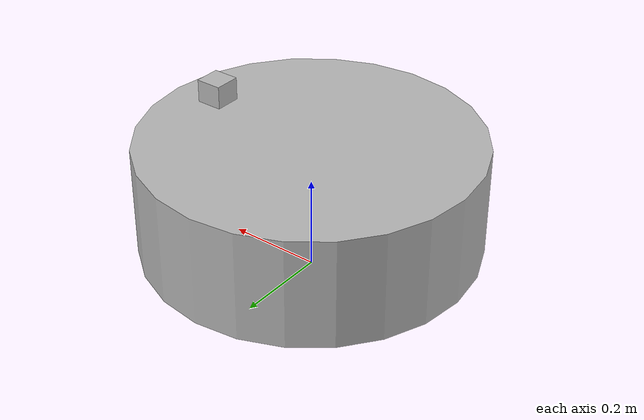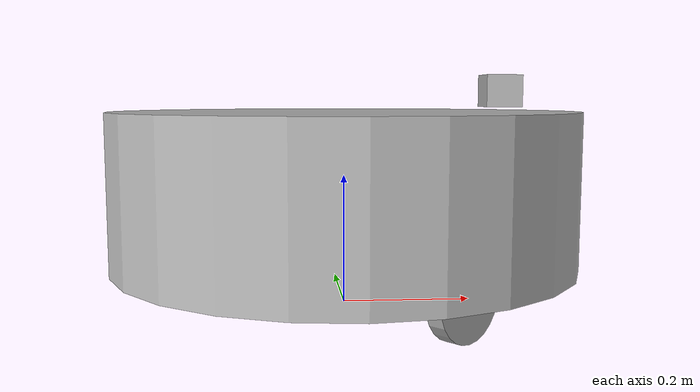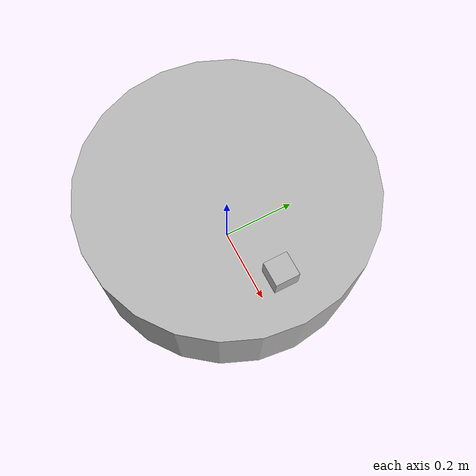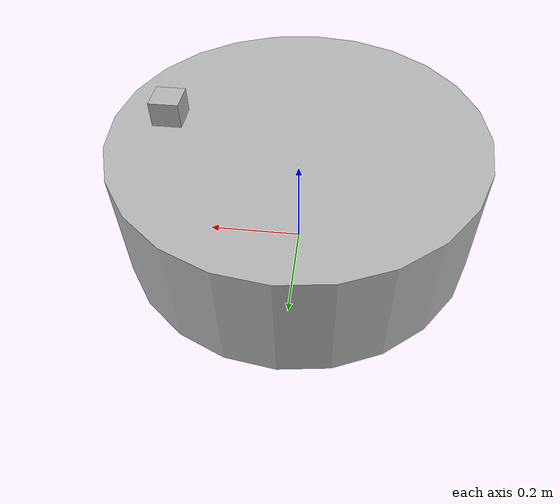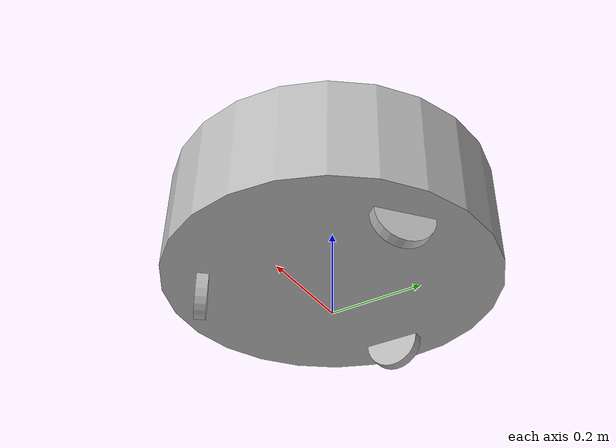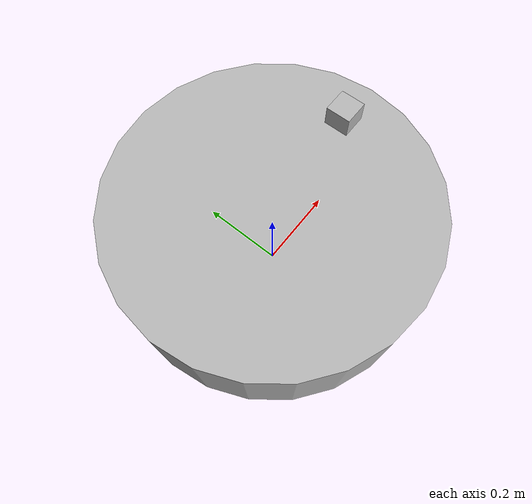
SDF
<?xml version="1.0"?>
<sdf version="1.0">
  <model name="SIM_IKART">
    <static>false</static>
    <link name="mobile_base_body">
      <pose> 0 0 .181 0 0 0 </pose>
      <inertial>
        <mass>75</mass>
      </inertial>
      <collision name="mobile_base_body_collision">
        <geometry>
          <cylinder>
            <radius> .3575 </radius>
            <length> .237 </length>
          </cylinder>
        </geometry>
      </collision>
      <visual name="mobile_base_body_visual">
        <geometry>
          <cylinder>
            <radius> .3575 </radius>
            <length> .237 </length>
          </cylinder>
        </geometry>
      </visual>
      <visual name="laser_box_body_visual">
        <pose> .245 0 .15 0 0 0</pose>
        <geometry>
          <box>
            <size> .056 .056 .0495 </size>
          </box>
        </geometry>
      </visual>
      <sensor name="base_laser" type="ray">
        <pose> .245 0 .15 0 0 0</pose>
        <visualize>true</visualize>
        <update_rate>40</update_rate>
        <ray>
          <scan>
            <horizontal>
              <samples>1080</samples>
              <resolution>0.25</resolution>
              <min_angle>-2.35</min_angle>
              <max_angle>2.35</max_angle>
            </horizontal>
          </scan>
          <range>
            <min>0.1</min>
            <max>30</max>
            <resolution>.01</resolution>
          </range>
          <noise>
            <type>gaussian</type>
            <mean>.0</mean>
            <stddev>.005</stddev>
          </noise>
        </ray>
        <plugin name="laser_sensor" filename="libgazebo_yarp_lasersensor.so">
          <yarpConfigurationFile>model://ikart_v1/conf/gazebo_ikart_laser_sensor.ini</yarpConfigurationFile>
        </plugin>
      </sensor>
    </link>
    <link name="laser_back_wheel">
      <pose> -0.273 0 0.0625 0 -1.5707 0 </pose>
      <collision name="laser_back_wheel_collision">
        <geometry>
          <cylinder>
            <radius> .0625 </radius>
            <length> .025 </length>
          </cylinder>
        </geometry>
        <surface>
          <friction>
            <ode>
              <mu>0.3</mu>
              <mu2>0</mu2>
            </ode>
          </friction>
        </surface>
      </collision>
      <visual name="laser_back_wheel_visual">
        <geometry>
          <cylinder>
            <radius> .0625 </radius>
            <length> .025 </length>
          </cylinder>
        </geometry>
      </visual>
    </link>
    <link name="laser_front_left_wheel">
      <pose> 0.1365 0.2364 0.0625 0 1.5707 0.8666 </pose>
      <collision name="laser_front_left_wheel_collision">
        <geometry>
          <cylinder>
            <radius> .0625 </radius>
            <length> .025 </length>
          </cylinder>
        </geometry>
        <surface>
          <friction>
            <ode>
              <mu>0.3</mu>
              <mu2>0</mu2>
            </ode>
          </friction>
        </surface>
      </collision>
      <visual name="laser_front_left_wheel_visual">
        <geometry>
          <cylinder>
            <radius> .0625 </radius>
            <length> .025 </length>
          </cylinder>
        </geometry>
      </visual>
    </link>
    <link name="laser_front_right_wheel">
      <pose> 0.1365 -0.2364 0.0625 0 1.5707 -0.866025403784 </pose>
      <collision name="laser_front_right_wheel_collision">
        <geometry>
          <cylinder>
            <radius> .0625 </radius>
            <length> .025 </length>
          </cylinder>
        </geometry>
        <surface>
          <friction>
            <ode>
              <mu>0.3</mu>
              <mu2>0</mu2>
            </ode>
          </friction>
        </surface>
      </collision>
      <visual name="laser_front_right_wheel_visual">
        <geometry>
          <cylinder>
            <radius> .0625 </radius>
            <length> .025 </length>
          </cylinder>
        </geometry>
      </visual>
    </link>
    <joint name="mobile_base_back_wheel_joint" type="revolute">
      <child>laser_back_wheel</child>
      <parent>mobile_base_body</parent>
      <axis>
        <xyz>0 0 1</xyz>
        <limit>
          <effort>100</effort>
          <velocity>50000</velocity>
        </limit>
        <dynamics>
          <damping>1</damping>
          <friction>0</friction>
          <spring_reference>0</spring_reference>
          <spring_stiffness>0</spring_stiffness>
        </dynamics>
        <use_parent_model_frame>0</use_parent_model_frame>
      </axis>
      <physics>
        <ode>
          <implicit_spring_damper>1</implicit_spring_damper>
          <cfm_damping>1</cfm_damping>
          <limit>
            <cfm>0</cfm>
            <erp>0.2</erp>
          </limit>
        </ode>
      </physics>
    </joint>
    <joint name="mobile_base_left_wheel_joint" type="revolute">
      <child>laser_front_left_wheel</child>
      <parent>mobile_base_body</parent>
      <axis>
        <xyz>0 0 1</xyz>
        <limit>
          <effort>100</effort>
          <velocity>50000</velocity>
        </limit>
        <dynamics>
          <damping>1</damping>
          <friction>0</friction>
          <spring_reference>0</spring_reference>
          <spring_stiffness>0</spring_stiffness>
        </dynamics>
        <use_parent_model_frame>0</use_parent_model_frame>
      </axis>
      <physics>
        <ode>
          <implicit_spring_damper>1</implicit_spring_damper>
          <cfm_damping>1</cfm_damping>
          <limit>
            <cfm>0</cfm>
            <erp>0.2</erp>
          </limit>
        </ode>
      </physics>
    </joint>
    <joint name="mobile_base_right_wheel_joint" type="revolute">
      <child>laser_front_right_wheel</child>
      <parent>mobile_base_body</parent>
      <axis>
        <xyz> 0 0 -1</xyz>
        <limit>
          <effort>100</effort>
          <velocity>50000</velocity>
        </limit>
        <dynamics>
          <damping>1</damping>
          <friction>0</friction>
          <spring_reference>0</spring_reference>
          <spring_stiffness>0</spring_stiffness>
        </dynamics>
        <use_parent_model_frame>0</use_parent_model_frame>
      </axis>
      <physics>
        <ode>
          <implicit_spring_damper>1</implicit_spring_damper>
          <cfm_damping>1</cfm_damping>
          <limit>
            <cfm>0</cfm>
            <erp>0.2</erp>
          </limit>
        </ode>
      </physics>
    </joint>
    <plugin name="controlboard_mobile_base" filename="libgazebo_yarp_controlboard.so">
      <yarpConfigurationFile>model://ikart_v1/conf/gazebo_ikart_mobile_base.ini</yarpConfigurationFile>
    </plugin>
  </model>
</sdf>
